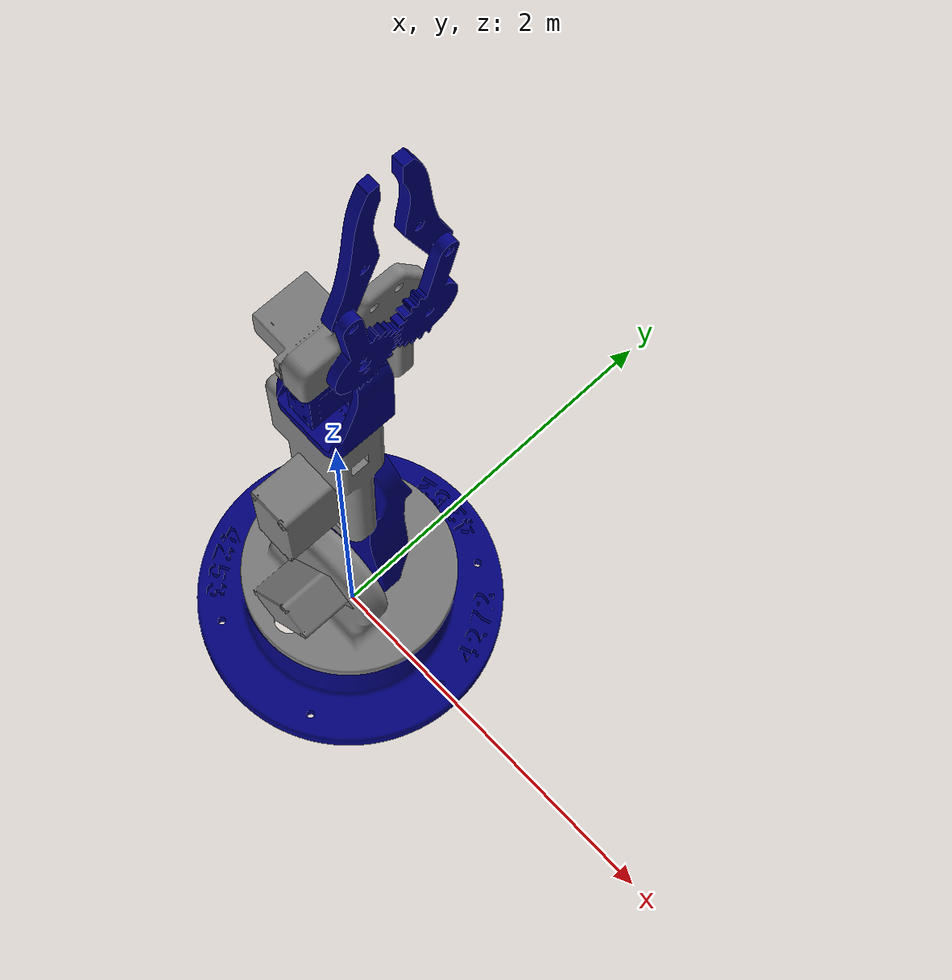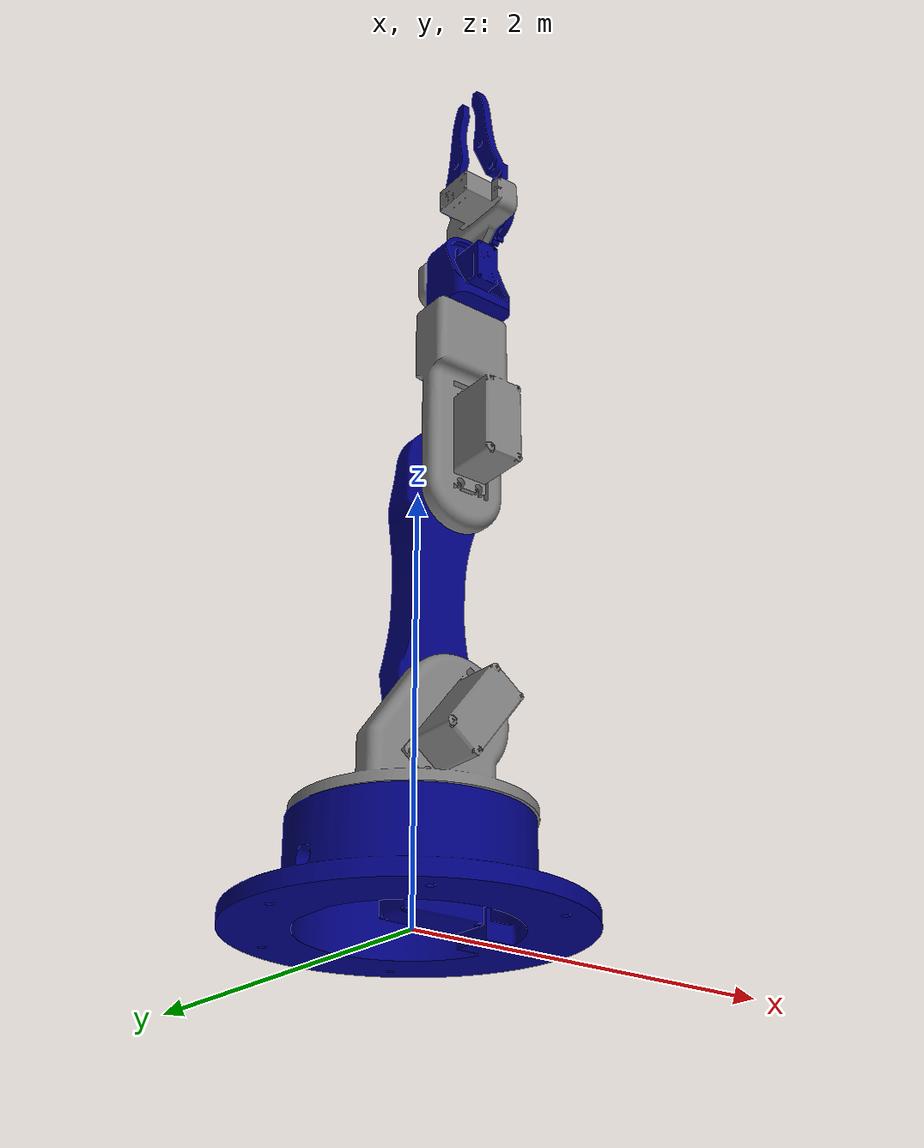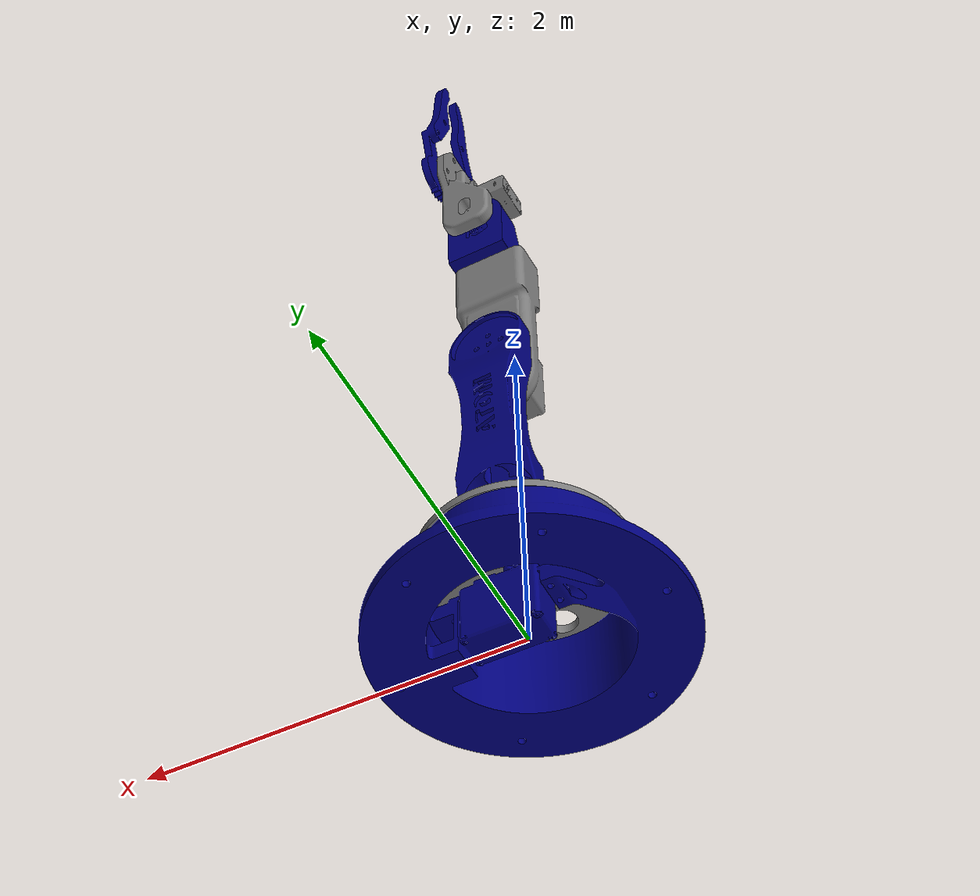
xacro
<?xml version="1.0"?>
<robot name="robot_arm" xmlns:xacro="http://www.ros.org/wiki/xacro">
    <xacro:arg name = "is_ignition" default = "true"/>
    <xacro:include filename = "$(find arm_urdf)/urdf/robot_gazebo.xacro"/>
    <xacro:include filename = "$(find arm_urdf)/urdf/robot_ros2_control.xacro"/>
    <xacro:include filename = "common_properties.xacro"/>
    <xacro:macro name = "inertia" params = "mass">
        <inertial>
            <mass value="${mass}"/>
            <inertia ixy="0.0" ixx="1e-3" izz="1e-3" iyz="0.0" iyy="1e-3" ixz="0.0"/>
        </inertial>
    </xacro:macro>

    <link name="world"/>

    <link name="base_link">
        <xacro:inertia mass="1"/>
        <visual>
            <origin rpy="0 0 0" xyz="0 0 -0.18"/>
            <geometry>
                <mesh filename="package://arm_urdf/meshes/base.stl" scale="0.01 0.01 0.01"/>
            </geometry>
            <material name="blue"></material>
        </visual>

        <collision>
            <origin rpy="0 0 0" xyz="0 0 -0.18"/>
            <geometry>
                <mesh filename="package://arm_urdf/meshes/base.stl" scale="0.01 0.01 0.01"/>
            </geometry>
        </collision>
    </link>

    <link name="shoulder_link">
        <xacro:inertia mass="0.8"/>
        <visual>
            <origin rpy="0 0 0" xyz="0 0 -0.18"/>
            <geometry>
                <mesh filename="package://arm_urdf/meshes/robot_shoulder.stl" scale="0.01 0.01 0.01"/>
            </geometry>
            <material name="grey"></material>
        </visual>

        <collision>
            <origin rpy="0 0 0" xyz="0 0 -0.18"/>
            <geometry>
                <mesh filename="package://arm_urdf/meshes/robot_shoulder.stl" scale="0.01 0.01 0.01"/>
            </geometry>
        </collision>
    </link>

    <link name="arm1_link">
        <xacro:inertia mass="0.3"/>
        <visual>
            <origin rpy="0 0 0" xyz="-0.1 0 -1.08"/>
            <geometry>
                <mesh filename="package://arm_urdf/meshes/arm_1.stl" scale="0.01 0.01 0.01"/>
            </geometry>
            <material name="blue"></material>
        </visual>

        <collision>
            <origin rpy="0 0 0" xyz="-0.09 0 -1.08"/>
            <geometry>
                <mesh filename="package://arm_urdf/meshes/arm_1.stl" scale="0.01 0.01 0.01"/>
            </geometry>
        </collision>
    </link>

    <link name="arm2_link">
        <xacro:inertia mass="0.3"/>
        <visual>
            <origin rpy="0 0 0" xyz="-0.13 0 -2.34"/>
            <geometry>
                <mesh filename="package://arm_urdf/meshes/arm_2.stl" scale="0.01 0.01 0.01"/>
            </geometry>
            <material name="grey"></material>
        </visual>

        <collision>
            <origin rpy="0 0 0" xyz="-0.13 0 -2.34"/>
            <geometry>
                <mesh filename="package://arm_urdf/meshes/arm_2.stl" scale="0.01 0.01 0.01"/>
            </geometry>
        </collision>
    </link>

    <link name="arm3_link">
        <xacro:inertia mass="0.1"/>
        <visual>
            <origin rpy="0 0 0" xyz="-0.19 0.13 -3.23"/>
            <geometry>
                <mesh filename="package://arm_urdf/meshes/arm_3.stl" scale="0.01 0.01 0.01"/>
            </geometry>
            <material name="blue"></material>
        </visual>

        <collision>
            <origin rpy="0 0 0" xyz="-0.19 0.13 -3.23"/>
            <geometry>
                <mesh filename="package://arm_urdf/meshes/arm_3.stl" scale="0.01 0.01 0.01"/>
            </geometry>
        </collision>
    </link>

    <link name="gripper_base_link">
        <xacro:inertia mass="0.1"/>
        <visual>
            <origin rpy="0 0 0" xyz="-0.19 -0.05 -3.49"/>
            <geometry>
                <mesh filename="package://arm_urdf/meshes/gripper_base.stl" scale="0.01 0.01 0.01"/>
            </geometry>
            <material name="grey"></material>
        </visual>

        <collision>
            <origin rpy="0 0 0" xyz="-0.19 -0.05 -3.49"/>
            <geometry>
                <mesh filename="package://arm_urdf/meshes/gripper_base.stl" scale="0.01 0.01 0.01"/>
            </geometry>
        </collision>
    </link>

    <link name="gripper_link_left">
        <xacro:inertia mass="0.05"/>
        <visual>
            <origin rpy="0 0 0" xyz="-0.33 0.14 -3.87"/>
            <geometry>
                <mesh filename="package://arm_urdf/meshes/gripper_link.stl" scale="0.01 0.01 0.01"/>
            </geometry>
            <material name="blue"></material>
        </visual>

        <collision>
            <origin rpy="0 0 0" xyz="-0.33 0.14 -3.87"/>
            <geometry>
                <mesh filename="package://arm_urdf/meshes/gripper_link.stl" scale="0.01 0.01 0.01"/>
            </geometry>
        </collision>
    </link>

    <link name="gripper_link_right">
        <xacro:inertia mass="0.05"/>
        <visual>
            <origin rpy="0 0 0" xyz="-0.33 -0.13 -3.87"/>
            <geometry>
                <mesh filename="package://arm_urdf/meshes/gripper_link_2.stl" scale="0.01 0.01 0.01"/>
            </geometry>
            <material name="blue"></material>
        </visual>

        <collision>
            <origin rpy="0 0 0" xyz="-0.33 -0.13 -3.87"/>
            <geometry>
                <mesh filename="package://arm_urdf/meshes/gripper_link_2.stl" scale="0.01 0.01 0.01"/>
            </geometry>
        </collision>
    </link>

    <joint name="virtual_joint" type="fixed">
        <parent link="world"/>
        <child link="base_link"/>
        <origin xyz="0 0 0" rpy="0 0 0"/>
    </joint>

    <joint name="base_shoulder_joint" type="revolute">
        <parent link="base_link"/>
        <child link="shoulder_link"/>
        <origin xyz="0 0 0" rpy="0 0 0"/>
        <axis xyz="0 0 1"/>
        <limit lower="-${pi/2}" upper="${pi/2}" effort="10" velocity="10"/>
    </joint>

    <joint name="shoulder_arm1_joint" type="revolute">
        <parent link="shoulder_link"/>
        <child link="arm1_link"/>
        <origin xyz="0.09 0 0.9" rpy="0 0 0"/>
        <axis xyz="0 1 0"/>
        <limit lower="-${pi/2}" upper="${pi/2}" effort="10" velocity="10"/>
    </joint>

    <joint name="arm1_arm2_joint" type="revolute">
        <parent link="arm1_link"/>
        <child link="arm2_link"/>
        <origin xyz="0.05 0 1.26" rpy="0 0 0"/>
        <axis xyz="0 1 0"/>
        <limit lower="-${pi/2}" upper="${pi/2}" effort="10" velocity="10"/>
    </joint>

    <joint name="arm2_arm3_joint" type="revolute">
        <parent link="arm2_link"/>
        <child link="arm3_link"/>
        <origin xyz="0.06 -0.134 0.89" rpy="0 0 0"/>
        <axis xyz="0 0 1"/>
        <limit lower="-${pi/2}" upper="${pi/2}" effort="10" velocity="10"/>
    </joint>

    <joint name="arm3_gripper_base_joint" type="revolute">
        <parent link="arm3_link"/>
        <child link="gripper_base_link"/>
        <origin xyz="0 0.18 0.253" rpy="0 0 0"/>
        <axis xyz="0 1 0"/>
        <limit lower="-${pi/2}" upper="${pi/2}" effort="10" velocity="10"/>
    </joint>

    <joint name="gripper_base_left_joint" type="revolute">
        <parent link="gripper_base_link"/>
        <child link="gripper_link_left"/>
        <origin xyz="0.15 -0.19 0.38" rpy="0 0 0"/>
        <axis xyz="1 0 0"/>
        <limit lower="0" upper="${pi/2}" effort="10" velocity="10"/>
    </joint>

    <joint name="gripper_base_right_joint" type="revolute">
        <parent link="gripper_base_link"/>
        <child link="gripper_link_right"/>
        <origin xyz="0.15 0.08 0.38" rpy="0 0 0"/>
        <axis xyz="1 0 0"/>
        <mimic joint = "gripper_base_left_joint" multiplier= "-1.0"></mimic>
        <limit lower="-${pi/2}" upper="0" effort="10" velocity="10"/>
    </joint>

</robot>

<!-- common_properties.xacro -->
<robot xmlns:xacro = "http://www.ros.org/wiki/xacro">

    <material name = "blue">
        <color rgba = "0 0 0.5 1"/>
    </material>

    <material name = "grey">
        <color rgba = "0.5 0.5 0.5 1"/>
    </material>

    <material name ="red">
        <color rgba = "1 0 0 1"/>
    </material>
</robot>
